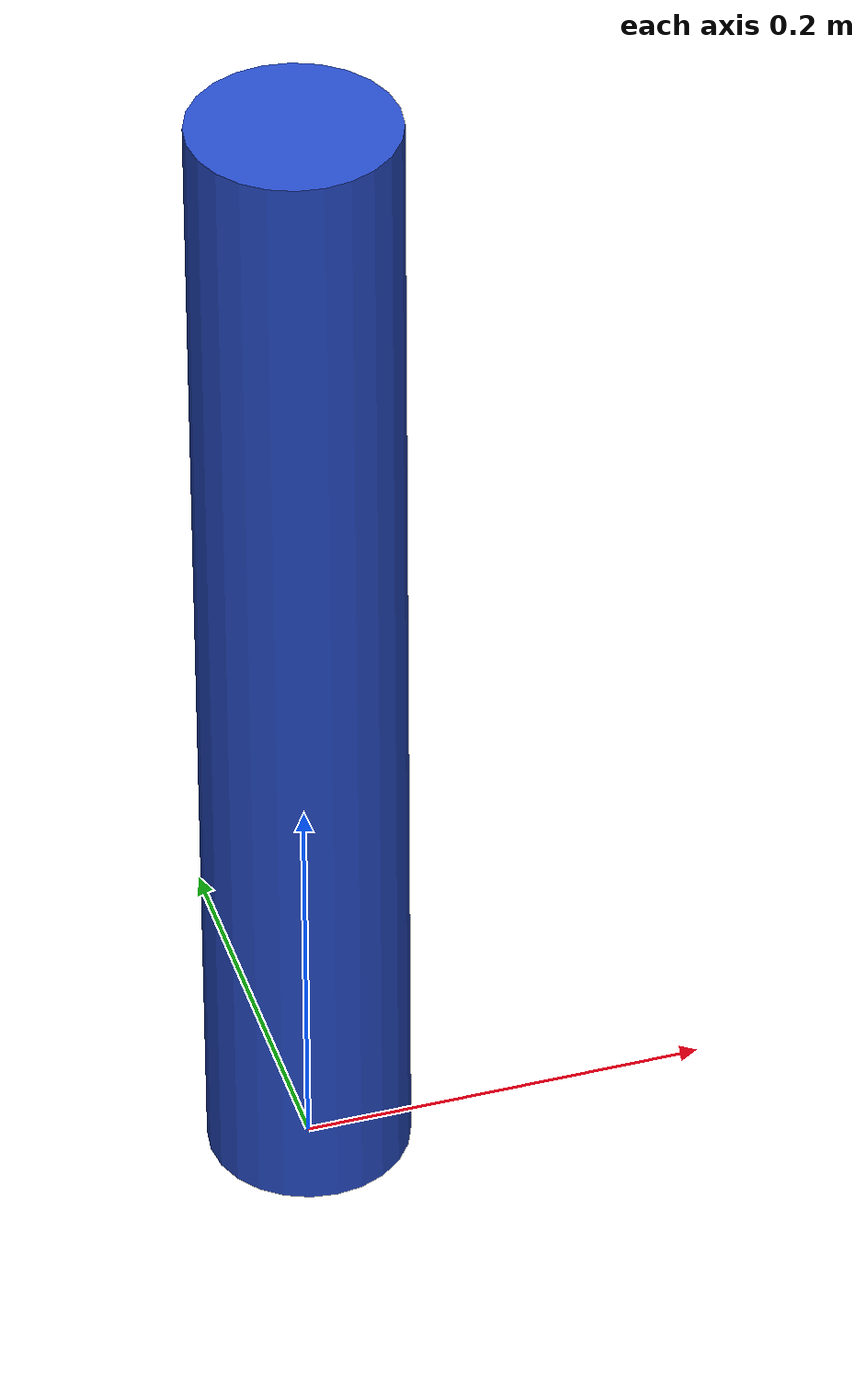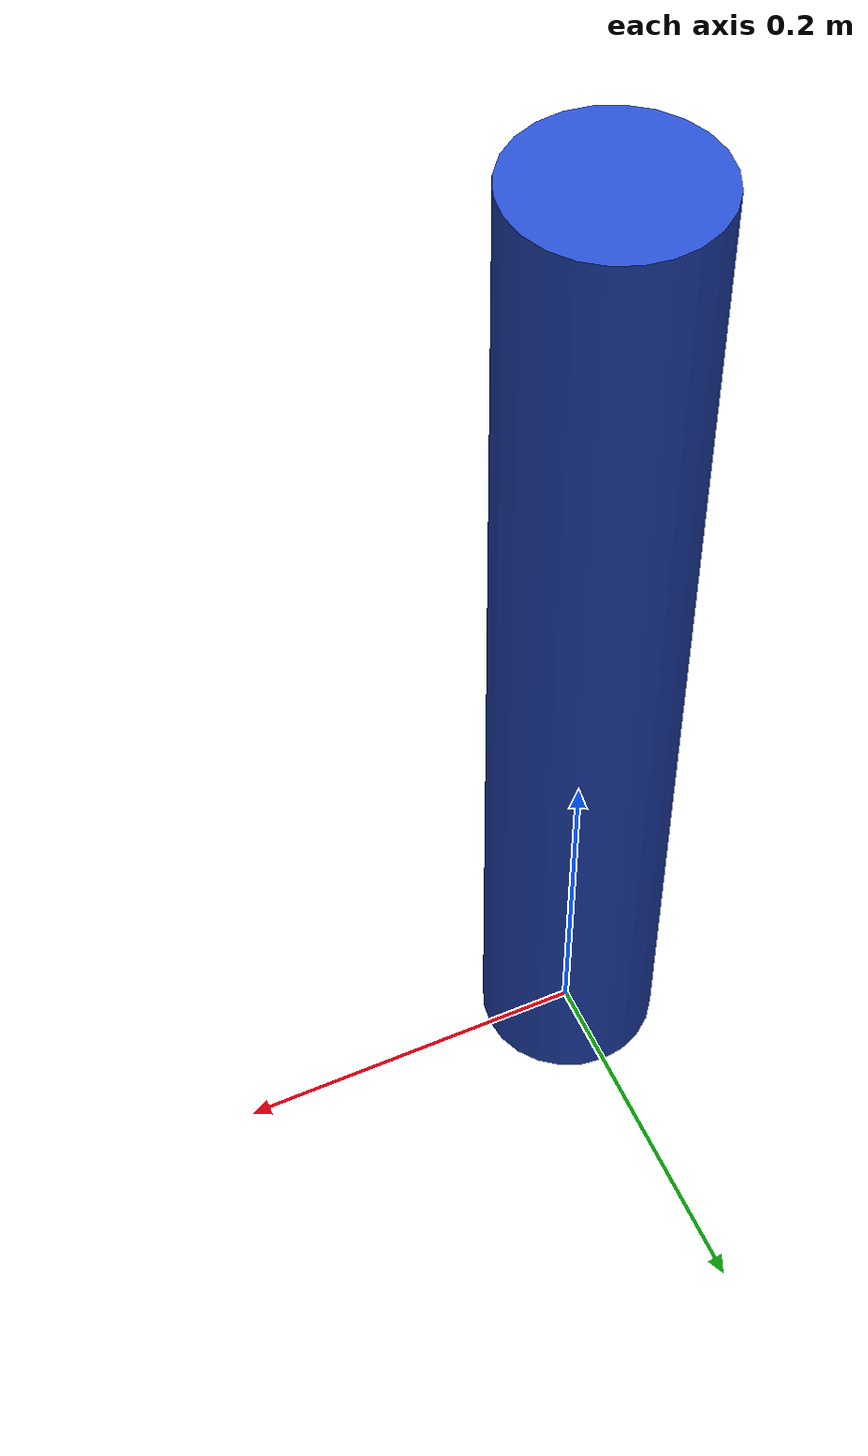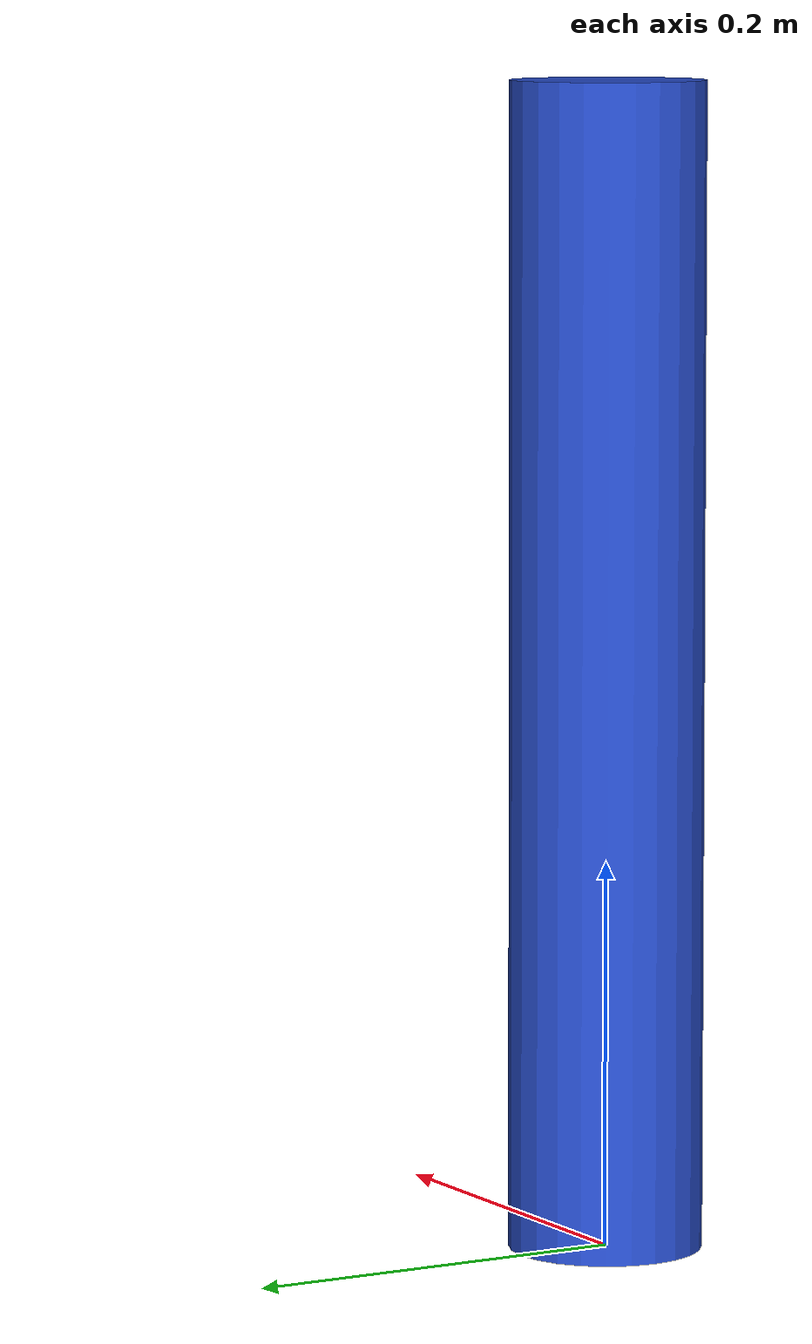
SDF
<sdf version='1.6'>
<model name='pole_005_06'>
  <static>false</static>
  <pose frame=''>0 0 0 0 -0 0</pose>
  <link name='link'>
  <pose frame=''>0 0 0.3 0 -0 0</pose>
    <inertial>
      <mass>1</mass>
      <inertia>
        <ixx>0.145833</ixx>
        <ixy>0</ixy>
        <ixz>0</ixz>
        <iyy>0.145833</iyy>
        <iyz>0</iyz>
        <izz>0.125</izz>
      </inertia>
    </inertial>
    <collision name='collision'>
      <geometry>
        <cylinder>
          <radius>0.05</radius>
          <length>.6</length>
        </cylinder>
      </geometry>
      <max_contacts>10</max_contacts>
      <surface>
        <contact>
          <ode/>
        </contact>
        <bounce/>
        <friction>
          <torsional>
            <ode/>
          </torsional>
          <ode/>
        </friction>
      </surface>
    </collision>
    <visual name='visual'>
      <geometry>
        <cylinder>
          <radius>0.05</radius>
          <length>.6</length>
        </cylinder>
      </geometry>
      <material>
        <script>
          <name>Gazebo/Blue</name>
          <uri>file://media/materials/scripts/gazebo.material</uri>
        </script>
      </material>
    </visual>
    <self_collide>0</self_collide>
    <kinematic>0</kinematic>
  </link>
</model>
</sdf>

<!-- Spawn with the following command: rosrun gazebo_ros spawn_model -sdf -file /home/justin/catkin_ws/src/navigation_test/configs/models/pole_005_06.srdf -model pole -x 1
 -->
